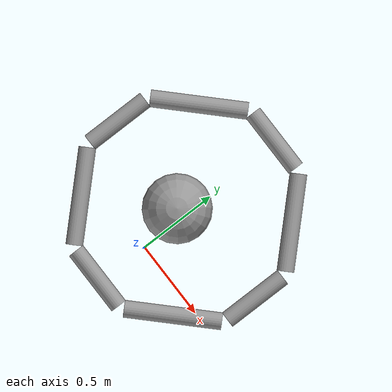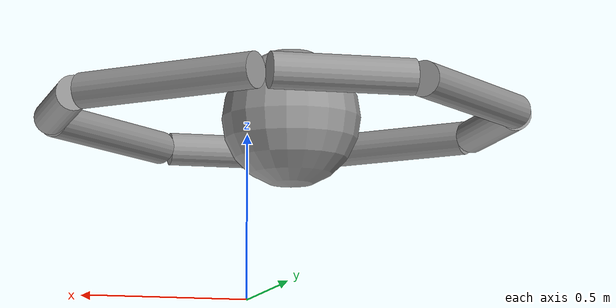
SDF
<?xml version='1.0'?>
<sdf version='1.7'>
  <model name='octagon'>
    <link name='link_4'>
      <inertial>
        <mass>1</mass>
        <inertia>
          <ixx>0.145833</ixx>
          <ixy>0</ixy>
          <ixz>0</ixz>
          <iyy>0.145833</iyy>
          <iyz>0</iyz>
          <izz>0.125</izz>
        </inertia>
        <pose>0 0 0 0 -0 0</pose>
      </inertial>
      <pose>-0.029127 0.97677 0.5 3.14159 1.57079 3.14159</pose>
      <gravity>1</gravity>
      <self_collide>0</self_collide>
      <kinematic>0</kinematic>
      <enable_wind>0</enable_wind>
      <visual name='visual'>
        <pose>0 0 0 0 -0 0</pose>
        <geometry>
          <cylinder>
            <radius>0.05</radius>
            <length>0.398068</length>
          </cylinder>
        </geometry>
        <material>
          <lighting>1</lighting>
          <script>
            <uri>file://media/materials/scripts/gazebo.material</uri>
            <name>Gazebo/Grey</name>
          </script>
          <shader type='pixel'>
            <normal_map>__default__</normal_map>
          </shader>
          <ambient>0.3 0.3 0.3 1</ambient>
          <diffuse>0.7 0.7 0.7 1</diffuse>
          <specular>0.01 0.01 0.01 1</specular>
          <emissive>0 0 0 1</emissive>
        </material>
        <transparency>0</transparency>
        <cast_shadows>1</cast_shadows>
      </visual>
      <collision name='collision'>
        <laser_retro>0</laser_retro>
        <max_contacts>10</max_contacts>
        <pose>0 0 0 0 -0 0</pose>
        <geometry>
          <cylinder>
            <radius>0.05</radius>
            <length>0.398068</length>
          </cylinder>
        </geometry>
        <surface>
          <friction>
            <ode>
              <mu>1</mu>
              <mu2>1</mu2>
              <fdir1>0 0 0</fdir1>
              <slip1>0</slip1>
              <slip2>0</slip2>
            </ode>
            <torsional>
              <coefficient>1</coefficient>
              <patch_radius>0</patch_radius>
              <surface_radius>0</surface_radius>
              <use_patch_radius>1</use_patch_radius>
              <ode>
                <slip>0</slip>
              </ode>
            </torsional>
          </friction>
          <bounce>
            <restitution_coefficient>0</restitution_coefficient>
            <threshold>1e+06</threshold>
          </bounce>
          <contact>
            <collide_without_contact>0</collide_without_contact>
            <collide_without_contact_bitmask>1</collide_without_contact_bitmask>
            <collide_bitmask>1</collide_bitmask>
            <ode>
              <soft_cfm>0</soft_cfm>
              <soft_erp>0.2</soft_erp>
              <kp>1e+13</kp>
              <kd>1</kd>
              <max_vel>0.01</max_vel>
              <min_depth>0</min_depth>
            </ode>
            <bullet>
              <split_impulse>1</split_impulse>
              <split_impulse_penetration_threshold>-0.01</split_impulse_penetration_threshold>
              <soft_cfm>0</soft_cfm>
              <soft_erp>0.2</soft_erp>
              <kp>1e+13</kp>
              <kd>1</kd>
            </bullet>
          </contact>
        </surface>
      </collision>
    </link>
    <link name='link_4_clone'>
      <inertial>
        <mass>1</mass>
        <inertia>
          <ixx>0.145833</ixx>
          <ixy>0</ixy>
          <ixz>0</ixz>
          <iyy>0.145833</iyy>
          <iyz>0</iyz>
          <izz>0.125</izz>
        </inertia>
        <pose>0 0 0 0 -0 0</pose>
      </inertial>
      <pose>-0.02399 -0.306731 0.5 3.14159 1.57079 3.14159</pose>
      <gravity>1</gravity>
      <self_collide>0</self_collide>
      <kinematic>0</kinematic>
      <enable_wind>0</enable_wind>
      <visual name='visual'>
        <pose>0 0 0 0 -0 0</pose>
        <geometry>
          <cylinder>
            <radius>0.05</radius>
            <length>0.398068</length>
          </cylinder>
        </geometry>
        <material>
          <lighting>1</lighting>
          <script>
            <uri>file://media/materials/scripts/gazebo.material</uri>
            <name>Gazebo/Grey</name>
          </script>
          <shader type='pixel'>
            <normal_map>__default__</normal_map>
          </shader>
          <ambient>0.3 0.3 0.3 1</ambient>
          <diffuse>0.7 0.7 0.7 1</diffuse>
          <specular>0.01 0.01 0.01 1</specular>
          <emissive>0 0 0 1</emissive>
        </material>
        <transparency>0</transparency>
        <cast_shadows>1</cast_shadows>
      </visual>
      <collision name='collision'>
        <laser_retro>0</laser_retro>
        <max_contacts>10</max_contacts>
        <pose>0 0 0 0 -0 0</pose>
        <geometry>
          <cylinder>
            <radius>0.05</radius>
            <length>0.398068</length>
          </cylinder>
        </geometry>
        <surface>
          <friction>
            <ode>
              <mu>1</mu>
              <mu2>1</mu2>
              <fdir1>0 0 0</fdir1>
              <slip1>0</slip1>
              <slip2>0</slip2>
            </ode>
            <torsional>
              <coefficient>1</coefficient>
              <patch_radius>0</patch_radius>
              <surface_radius>0</surface_radius>
              <use_patch_radius>1</use_patch_radius>
              <ode>
                <slip>0</slip>
              </ode>
            </torsional>
          </friction>
          <bounce>
            <restitution_coefficient>0</restitution_coefficient>
            <threshold>1e+06</threshold>
          </bounce>
          <contact>
            <collide_without_contact>0</collide_without_contact>
            <collide_without_contact_bitmask>1</collide_without_contact_bitmask>
            <collide_bitmask>1</collide_bitmask>
            <ode>
              <soft_cfm>0</soft_cfm>
              <soft_erp>0.2</soft_erp>
              <kp>1e+13</kp>
              <kd>1</kd>
              <max_vel>0.01</max_vel>
              <min_depth>0</min_depth>
            </ode>
            <bullet>
              <split_impulse>1</split_impulse>
              <split_impulse_penetration_threshold>-0.01</split_impulse_penetration_threshold>
              <soft_cfm>0</soft_cfm>
              <soft_erp>0.2</soft_erp>
              <kp>1e+13</kp>
              <kd>1</kd>
            </bullet>
          </contact>
        </surface>
      </collision>
    </link>
    <link name='link_4_clone_0'>
      <inertial>
        <mass>1</mass>
        <inertia>
          <ixx>0.145833</ixx>
          <ixy>0</ixy>
          <ixz>0</ixz>
          <iyy>0.145833</iyy>
          <iyz>0</iyz>
          <izz>0.125</izz>
        </inertia>
        <pose>0 0 0 0 -0 0</pose>
      </inertial>
      <pose>-0.45644 0.761979 0.5 2.35102 1.57079 3.13642</pose>
      <gravity>1</gravity>
      <self_collide>0</self_collide>
      <kinematic>0</kinematic>
      <enable_wind>0</enable_wind>
      <visual name='visual'>
        <pose>0 0 0 0 -0 0</pose>
        <geometry>
          <cylinder>
            <radius>0.05</radius>
            <length>0.562966</length>
          </cylinder>
        </geometry>
        <material>
          <lighting>1</lighting>
          <script>
            <uri>file://media/materials/scripts/gazebo.material</uri>
            <name>Gazebo/Grey</name>
          </script>
          <shader type='pixel'>
            <normal_map>__default__</normal_map>
          </shader>
          <ambient>0.3 0.3 0.3 1</ambient>
          <diffuse>0.7 0.7 0.7 1</diffuse>
          <specular>0.01 0.01 0.01 1</specular>
          <emissive>0 0 0 1</emissive>
        </material>
        <transparency>0</transparency>
        <cast_shadows>1</cast_shadows>
      </visual>
      <collision name='collision'>
        <laser_retro>0</laser_retro>
        <max_contacts>10</max_contacts>
        <pose>0 0 0 0 -0 0</pose>
        <geometry>
          <cylinder>
            <radius>0.05</radius>
            <length>0.562966</length>
          </cylinder>
        </geometry>
        <surface>
          <friction>
            <ode>
              <mu>1</mu>
              <mu2>1</mu2>
              <fdir1>0 0 0</fdir1>
              <slip1>0</slip1>
              <slip2>0</slip2>
            </ode>
            <torsional>
              <coefficient>1</coefficient>
              <patch_radius>0</patch_radius>
              <surface_radius>0</surface_radius>
              <use_patch_radius>1</use_patch_radius>
              <ode>
                <slip>0</slip>
              </ode>
            </torsional>
          </friction>
          <bounce>
            <restitution_coefficient>0</restitution_coefficient>
            <threshold>1e+06</threshold>
          </bounce>
          <contact>
            <collide_without_contact>0</collide_without_contact>
            <collide_without_contact_bitmask>1</collide_without_contact_bitmask>
            <collide_bitmask>1</collide_bitmask>
            <ode>
              <soft_cfm>0</soft_cfm>
              <soft_erp>0.2</soft_erp>
              <kp>1e+13</kp>
              <kd>1</kd>
              <max_vel>0.01</max_vel>
              <min_depth>0</min_depth>
            </ode>
            <bullet>
              <split_impulse>1</split_impulse>
              <split_impulse_penetration_threshold>-0.01</split_impulse_penetration_threshold>
              <soft_cfm>0</soft_cfm>
              <soft_erp>0.2</soft_erp>
              <kp>1e+13</kp>
              <kd>1</kd>
            </bullet>
          </contact>
        </surface>
      </collision>
    </link>
    <link name='link_4_clone_0_clone'>
      <inertial>
        <mass>1</mass>
        <inertia>
          <ixx>0.145833</ixx>
          <ixy>0</ixy>
          <ixz>0</ixz>
          <iyy>0.145833</iyy>
          <iyz>0</iyz>
          <izz>0.125</izz>
        </inertia>
        <pose>0 0 0 0 -0 0</pose>
      </inertial>
      <pose>0.406078 -0.092853 0.499999 2.35102 1.57079 3.13642</pose>
      <gravity>1</gravity>
      <self_collide>0</self_collide>
      <kinematic>0</kinematic>
      <enable_wind>0</enable_wind>
      <visual name='visual'>
        <pose>0 0 0 0 -0 0</pose>
        <geometry>
          <cylinder>
            <radius>0.05</radius>
            <length>0.562966</length>
          </cylinder>
        </geometry>
        <material>
          <lighting>1</lighting>
          <script>
            <uri>file://media/materials/scripts/gazebo.material</uri>
            <name>Gazebo/Grey</name>
          </script>
          <shader type='pixel'>
            <normal_map>__default__</normal_map>
          </shader>
          <ambient>0.3 0.3 0.3 1</ambient>
          <diffuse>0.7 0.7 0.7 1</diffuse>
          <specular>0.01 0.01 0.01 1</specular>
          <emissive>0 0 0 1</emissive>
        </material>
        <transparency>0</transparency>
        <cast_shadows>1</cast_shadows>
      </visual>
      <collision name='collision'>
        <laser_retro>0</laser_retro>
        <max_contacts>10</max_contacts>
        <pose>0 0 0 0 -0 0</pose>
        <geometry>
          <cylinder>
            <radius>0.05</radius>
            <length>0.562966</length>
          </cylinder>
        </geometry>
        <surface>
          <friction>
            <ode>
              <mu>1</mu>
              <mu2>1</mu2>
              <fdir1>0 0 0</fdir1>
              <slip1>0</slip1>
              <slip2>0</slip2>
            </ode>
            <torsional>
              <coefficient>1</coefficient>
              <patch_radius>0</patch_radius>
              <surface_radius>0</surface_radius>
              <use_patch_radius>1</use_patch_radius>
              <ode>
                <slip>0</slip>
              </ode>
            </torsional>
          </friction>
          <bounce>
            <restitution_coefficient>0</restitution_coefficient>
            <threshold>1e+06</threshold>
          </bounce>
          <contact>
            <collide_without_contact>0</collide_without_contact>
            <collide_without_contact_bitmask>1</collide_without_contact_bitmask>
            <collide_bitmask>1</collide_bitmask>
            <ode>
              <soft_cfm>0</soft_cfm>
              <soft_erp>0.2</soft_erp>
              <kp>1e+13</kp>
              <kd>1</kd>
              <max_vel>0.01</max_vel>
              <min_depth>0</min_depth>
            </ode>
            <bullet>
              <split_impulse>1</split_impulse>
              <split_impulse_penetration_threshold>-0.01</split_impulse_penetration_threshold>
              <soft_cfm>0</soft_cfm>
              <soft_erp>0.2</soft_erp>
              <kp>1e+13</kp>
              <kd>1</kd>
            </bullet>
          </contact>
        </surface>
      </collision>
    </link>
    <link name='link_4_clone_0_clone_0'>
      <inertial>
        <mass>1</mass>
        <inertia>
          <ixx>0.145833</ixx>
          <ixy>0</ixy>
          <ixz>0</ixz>
          <iyy>0.145833</iyy>
          <iyz>0</iyz>
          <izz>0.125</izz>
        </inertia>
        <pose>0 0 0 0 -0 0</pose>
      </inertial>
      <pose>-0.454744 -0.094458 0.5 0.786985 1.57079 3.13801</pose>
      <gravity>1</gravity>
      <self_collide>0</self_collide>
      <kinematic>0</kinematic>
      <enable_wind>0</enable_wind>
      <visual name='visual'>
        <pose>0 0 0 0 -0 0</pose>
        <geometry>
          <cylinder>
            <radius>0.05</radius>
            <length>0.562966</length>
          </cylinder>
        </geometry>
        <material>
          <lighting>1</lighting>
          <script>
            <uri>file://media/materials/scripts/gazebo.material</uri>
            <name>Gazebo/Grey</name>
          </script>
          <shader type='pixel'>
            <normal_map>__default__</normal_map>
          </shader>
          <ambient>0.3 0.3 0.3 1</ambient>
          <diffuse>0.7 0.7 0.7 1</diffuse>
          <specular>0.01 0.01 0.01 1</specular>
          <emissive>0 0 0 1</emissive>
        </material>
        <transparency>0</transparency>
        <cast_shadows>1</cast_shadows>
      </visual>
      <collision name='collision'>
        <laser_retro>0</laser_retro>
        <max_contacts>10</max_contacts>
        <pose>0 0 0 0 -0 0</pose>
        <geometry>
          <cylinder>
            <radius>0.05</radius>
            <length>0.562966</length>
          </cylinder>
        </geometry>
        <surface>
          <friction>
            <ode>
              <mu>1</mu>
              <mu2>1</mu2>
              <fdir1>0 0 0</fdir1>
              <slip1>0</slip1>
              <slip2>0</slip2>
            </ode>
            <torsional>
              <coefficient>1</coefficient>
              <patch_radius>0</patch_radius>
              <surface_radius>0</surface_radius>
              <use_patch_radius>1</use_patch_radius>
              <ode>
                <slip>0</slip>
              </ode>
            </torsional>
          </friction>
          <bounce>
            <restitution_coefficient>0</restitution_coefficient>
            <threshold>1e+06</threshold>
          </bounce>
          <contact>
            <collide_without_contact>0</collide_without_contact>
            <collide_without_contact_bitmask>1</collide_without_contact_bitmask>
            <collide_bitmask>1</collide_bitmask>
            <ode>
              <soft_cfm>0</soft_cfm>
              <soft_erp>0.2</soft_erp>
              <kp>1e+13</kp>
              <kd>1</kd>
              <max_vel>0.01</max_vel>
              <min_depth>0</min_depth>
            </ode>
            <bullet>
              <split_impulse>1</split_impulse>
              <split_impulse_penetration_threshold>-0.01</split_impulse_penetration_threshold>
              <soft_cfm>0</soft_cfm>
              <soft_erp>0.2</soft_erp>
              <kp>1e+13</kp>
              <kd>1</kd>
            </bullet>
          </contact>
        </surface>
      </collision>
    </link>
    <link name='link_4_clone_0_clone_0_clone'>
      <inertial>
        <mass>1</mass>
        <inertia>
          <ixx>0.145833</ixx>
          <ixy>0</ixy>
          <ixz>0</ixz>
          <iyy>0.145833</iyy>
          <iyz>0</iyz>
          <izz>0.125</izz>
        </inertia>
        <pose>0 0 0 0 -0 0</pose>
      </inertial>
      <pose>0.40382 0.769921 0.5 0.786985 1.57079 3.13801</pose>
      <gravity>1</gravity>
      <self_collide>0</self_collide>
      <kinematic>0</kinematic>
      <enable_wind>0</enable_wind>
      <visual name='visual'>
        <pose>0 0 0 0 -0 0</pose>
        <geometry>
          <cylinder>
            <radius>0.05</radius>
            <length>0.562966</length>
          </cylinder>
        </geometry>
        <material>
          <lighting>1</lighting>
          <script>
            <uri>file://media/materials/scripts/gazebo.material</uri>
            <name>Gazebo/Grey</name>
          </script>
          <shader type='pixel'>
            <normal_map>__default__</normal_map>
          </shader>
          <ambient>0.3 0.3 0.3 1</ambient>
          <diffuse>0.7 0.7 0.7 1</diffuse>
          <specular>0.01 0.01 0.01 1</specular>
          <emissive>0 0 0 1</emissive>
        </material>
        <transparency>0</transparency>
        <cast_shadows>1</cast_shadows>
      </visual>
      <collision name='collision'>
        <laser_retro>0</laser_retro>
        <max_contacts>10</max_contacts>
        <pose>0 0 0 0 -0 0</pose>
        <geometry>
          <cylinder>
            <radius>0.05</radius>
            <length>0.562966</length>
          </cylinder>
        </geometry>
        <surface>
          <friction>
            <ode>
              <mu>1</mu>
              <mu2>1</mu2>
              <fdir1>0 0 0</fdir1>
              <slip1>0</slip1>
              <slip2>0</slip2>
            </ode>
            <torsional>
              <coefficient>1</coefficient>
              <patch_radius>0</patch_radius>
              <surface_radius>0</surface_radius>
              <use_patch_radius>1</use_patch_radius>
              <ode>
                <slip>0</slip>
              </ode>
            </torsional>
          </friction>
          <bounce>
            <restitution_coefficient>0</restitution_coefficient>
            <threshold>1e+06</threshold>
          </bounce>
          <contact>
            <collide_without_contact>0</collide_without_contact>
            <collide_without_contact_bitmask>1</collide_without_contact_bitmask>
            <collide_bitmask>1</collide_bitmask>
            <ode>
              <soft_cfm>0</soft_cfm>
              <soft_erp>0.2</soft_erp>
              <kp>1e+13</kp>
              <kd>1</kd>
              <max_vel>0.01</max_vel>
              <min_depth>0</min_depth>
            </ode>
            <bullet>
              <split_impulse>1</split_impulse>
              <split_impulse_penetration_threshold>-0.01</split_impulse_penetration_threshold>
              <soft_cfm>0</soft_cfm>
              <soft_erp>0.2</soft_erp>
              <kp>1e+13</kp>
              <kd>1</kd>
            </bullet>
          </contact>
        </surface>
      </collision>
    </link>
    <link name='link_4_clone_1'>
      <inertial>
        <mass>1</mass>
        <inertia>
          <ixx>0.145833</ixx>
          <ixy>0</ixy>
          <ixz>0</ixz>
          <iyy>0.145833</iyy>
          <iyz>0</iyz>
          <izz>0.125</izz>
        </inertia>
        <pose>0 0 0 0 -0 0</pose>
      </inertial>
      <pose>-0.665422 0.33412 0.500002 1.5708 1.57079 3.14159</pose>
      <gravity>1</gravity>
      <self_collide>0</self_collide>
      <kinematic>0</kinematic>
      <enable_wind>0</enable_wind>
      <visual name='visual'>
        <pose>0 0 0 0 -0 0</pose>
        <geometry>
          <cylinder>
            <radius>0.05</radius>
            <length>0.398068</length>
          </cylinder>
        </geometry>
        <material>
          <lighting>1</lighting>
          <script>
            <uri>file://media/materials/scripts/gazebo.material</uri>
            <name>Gazebo/Grey</name>
          </script>
          <shader type='pixel'>
            <normal_map>__default__</normal_map>
          </shader>
          <ambient>0.3 0.3 0.3 1</ambient>
          <diffuse>0.7 0.7 0.7 1</diffuse>
          <specular>0.01 0.01 0.01 1</specular>
          <emissive>0 0 0 1</emissive>
        </material>
        <transparency>0</transparency>
        <cast_shadows>1</cast_shadows>
      </visual>
      <collision name='collision'>
        <laser_retro>0</laser_retro>
        <max_contacts>10</max_contacts>
        <pose>0 0 0 0 -0 0</pose>
        <geometry>
          <cylinder>
            <radius>0.05</radius>
            <length>0.398068</length>
          </cylinder>
        </geometry>
        <surface>
          <friction>
            <ode>
              <mu>1</mu>
              <mu2>1</mu2>
              <fdir1>0 0 0</fdir1>
              <slip1>0</slip1>
              <slip2>0</slip2>
            </ode>
            <torsional>
              <coefficient>1</coefficient>
              <patch_radius>0</patch_radius>
              <surface_radius>0</surface_radius>
              <use_patch_radius>1</use_patch_radius>
              <ode>
                <slip>0</slip>
              </ode>
            </torsional>
          </friction>
          <bounce>
            <restitution_coefficient>0</restitution_coefficient>
            <threshold>1e+06</threshold>
          </bounce>
          <contact>
            <collide_without_contact>0</collide_without_contact>
            <collide_without_contact_bitmask>1</collide_without_contact_bitmask>
            <collide_bitmask>1</collide_bitmask>
            <ode>
              <soft_cfm>0</soft_cfm>
              <soft_erp>0.2</soft_erp>
              <kp>1e+13</kp>
              <kd>1</kd>
              <max_vel>0.01</max_vel>
              <min_depth>0</min_depth>
            </ode>
            <bullet>
              <split_impulse>1</split_impulse>
              <split_impulse_penetration_threshold>-0.01</split_impulse_penetration_threshold>
              <soft_cfm>0</soft_cfm>
              <soft_erp>0.2</soft_erp>
              <kp>1e+13</kp>
              <kd>1</kd>
            </bullet>
          </contact>
        </surface>
      </collision>
    </link>
    <link name='link_4_clone_1_clone'>
      <inertial>
        <mass>1</mass>
        <inertia>
          <ixx>0.145833</ixx>
          <ixy>0</ixy>
          <ixz>0</ixz>
          <iyy>0.145833</iyy>
          <iyz>0</iyz>
          <izz>0.125</izz>
        </inertia>
        <pose>0 0 0 0 -0 0</pose>
      </inertial>
      <pose>0.618286 0.337066 0.5 1.5708 1.57079 3.14159</pose>
      <gravity>1</gravity>
      <self_collide>0</self_collide>
      <kinematic>0</kinematic>
      <enable_wind>0</enable_wind>
      <visual name='visual'>
        <pose>0 0 0 0 -0 0</pose>
        <geometry>
          <cylinder>
            <radius>0.05</radius>
            <length>0.398068</length>
          </cylinder>
        </geometry>
        <material>
          <lighting>1</lighting>
          <script>
            <uri>file://media/materials/scripts/gazebo.material</uri>
            <name>Gazebo/Grey</name>
          </script>
          <shader type='pixel'>
            <normal_map>__default__</normal_map>
          </shader>
          <ambient>0.3 0.3 0.3 1</ambient>
          <diffuse>0.7 0.7 0.7 1</diffuse>
          <specular>0.01 0.01 0.01 1</specular>
          <emissive>0 0 0 1</emissive>
        </material>
        <transparency>0</transparency>
        <cast_shadows>1</cast_shadows>
      </visual>
      <collision name='collision'>
        <laser_retro>0</laser_retro>
        <max_contacts>10</max_contacts>
        <pose>0 0 0 0 -0 0</pose>
        <geometry>
          <cylinder>
            <radius>0.05</radius>
            <length>0.398068</length>
          </cylinder>
        </geometry>
        <surface>
          <friction>
            <ode>
              <mu>1</mu>
              <mu2>1</mu2>
              <fdir1>0 0 0</fdir1>
              <slip1>0</slip1>
              <slip2>0</slip2>
            </ode>
            <torsional>
              <coefficient>1</coefficient>
              <patch_radius>0</patch_radius>
              <surface_radius>0</surface_radius>
              <use_patch_radius>1</use_patch_radius>
              <ode>
                <slip>0</slip>
              </ode>
            </torsional>
          </friction>
          <bounce>
            <restitution_coefficient>0</restitution_coefficient>
            <threshold>1e+06</threshold>
          </bounce>
          <contact>
            <collide_without_contact>0</collide_without_contact>
            <collide_without_contact_bitmask>1</collide_without_contact_bitmask>
            <collide_bitmask>1</collide_bitmask>
            <ode>
              <soft_cfm>0</soft_cfm>
              <soft_erp>0.2</soft_erp>
              <kp>1e+13</kp>
              <kd>1</kd>
              <max_vel>0.01</max_vel>
              <min_depth>0</min_depth>
            </ode>
            <bullet>
              <split_impulse>1</split_impulse>
              <split_impulse_penetration_threshold>-0.01</split_impulse_penetration_threshold>
              <soft_cfm>0</soft_cfm>
              <soft_erp>0.2</soft_erp>
              <kp>1e+13</kp>
              <kd>1</kd>
            </bullet>
          </contact>
        </surface>
      </collision>
    </link>
    <link name='link_5'>
      <inertial>
        <mass>0.130267</mass>
        <inertia>
          <ixx>0.00055181</ixx>
          <ixy>0</ixy>
          <ixz>0</ixz>
          <iyy>0.00055181</iyy>
          <iyz>0</iyz>
          <izz>0.00055181</izz>
        </inertia>
        <pose>0 0 0 0 -0 0</pose>
      </inertial>
      <pose>-0.060768 0.298874 0.5 0 -0 0</pose>
      <gravity>1</gravity>
      <self_collide>0</self_collide>
      <kinematic>0</kinematic>
      <enable_wind>0</enable_wind>
      <visual name='visual'>
        <pose>0 0 0 0 -0 0</pose>
        <geometry>
          <sphere>
            <radius>0.202999</radius>
          </sphere>
        </geometry>
        <material>
          <lighting>1</lighting>
          <script>
            <uri>file://media/materials/scripts/gazebo.material</uri>
            <name>Gazebo/Grey</name>
          </script>
          <shader type='pixel'>
            <normal_map>__default__</normal_map>
          </shader>
          <ambient>0 0 0 1</ambient>
          <diffuse>0 0 0 1</diffuse>
          <specular>0 0 0 1</specular>
          <emissive>0 0 0 1</emissive>
        </material>
        <transparency>0</transparency>
        <cast_shadows>1</cast_shadows>
      </visual>
      <collision name='collision'>
        <laser_retro>0</laser_retro>
        <max_contacts>10</max_contacts>
        <pose>0 0 0 0 -0 0</pose>
        <geometry>
          <sphere>
            <radius>0.202999</radius>
          </sphere>
        </geometry>
        <surface>
          <friction>
            <ode>
              <mu>1</mu>
              <mu2>1</mu2>
              <fdir1>0 0 0</fdir1>
              <slip1>0</slip1>
              <slip2>0</slip2>
            </ode>
            <torsional>
              <coefficient>1</coefficient>
              <patch_radius>0</patch_radius>
              <surface_radius>0</surface_radius>
              <use_patch_radius>1</use_patch_radius>
              <ode>
                <slip>0</slip>
              </ode>
            </torsional>
          </friction>
          <bounce>
            <restitution_coefficient>0</restitution_coefficient>
            <threshold>1e+06</threshold>
          </bounce>
          <contact>
            <collide_without_contact>0</collide_without_contact>
            <collide_without_contact_bitmask>1</collide_without_contact_bitmask>
            <collide_bitmask>1</collide_bitmask>
            <ode>
              <soft_cfm>0</soft_cfm>
              <soft_erp>0.2</soft_erp>
              <kp>1e+13</kp>
              <kd>1</kd>
              <max_vel>0.01</max_vel>
              <min_depth>0</min_depth>
            </ode>
            <bullet>
              <split_impulse>1</split_impulse>
              <split_impulse_penetration_threshold>-0.01</split_impulse_penetration_threshold>
              <soft_cfm>0</soft_cfm>
              <soft_erp>0.2</soft_erp>
              <kp>1e+13</kp>
              <kd>1</kd>
            </bullet>
          </contact>
        </surface>
      </collision>
    </link>
    <joint name='link_5_JOINT_10' type='fixed'>
      <parent>link_5</parent>
      <child>link_4_clone_0</child>
      <pose>0 0 0 0 -0 0</pose>
      <physics>
        <ode>
          <limit>
            <cfm>0</cfm>
            <erp>0.2</erp>
          </limit>
          <suspension>
            <cfm>0</cfm>
            <erp>0.2</erp>
          </suspension>
        </ode>
      </physics>
    </joint>
    <joint name='link_5_JOINT_11' type='fixed'>
      <parent>link_5</parent>
      <child>link_4</child>
      <pose>0 0 0 0 -0 0</pose>
      <physics>
        <ode>
          <limit>
            <cfm>0</cfm>
            <erp>0.2</erp>
          </limit>
          <suspension>
            <cfm>0</cfm>
            <erp>0.2</erp>
          </suspension>
        </ode>
      </physics>
    </joint>
    <joint name='link_5_JOINT_12' type='fixed'>
      <parent>link_5</parent>
      <child>link_4_clone_0_clone_0_clone</child>
      <pose>0 0 0 0 -0 0</pose>
      <physics>
        <ode>
          <limit>
            <cfm>0</cfm>
            <erp>0.2</erp>
          </limit>
          <suspension>
            <cfm>0</cfm>
            <erp>0.2</erp>
          </suspension>
        </ode>
      </physics>
    </joint>
    <joint name='link_5_JOINT_13' type='fixed'>
      <parent>link_5</parent>
      <child>link_4_clone_1_clone</child>
      <pose>0 0 0 0 -0 0</pose>
      <physics>
        <ode>
          <limit>
            <cfm>0</cfm>
            <erp>0.2</erp>
          </limit>
          <suspension>
            <cfm>0</cfm>
            <erp>0.2</erp>
          </suspension>
        </ode>
      </physics>
    </joint>
    <joint name='link_5_JOINT_14' type='fixed'>
      <parent>link_5</parent>
      <child>link_4_clone_0_clone</child>
      <pose>0 0 0 0 -0 0</pose>
      <physics>
        <ode>
          <limit>
            <cfm>0</cfm>
            <erp>0.2</erp>
          </limit>
          <suspension>
            <cfm>0</cfm>
            <erp>0.2</erp>
          </suspension>
        </ode>
      </physics>
    </joint>
    <joint name='link_5_JOINT_15' type='fixed'>
      <parent>link_5</parent>
      <child>link_4_clone</child>
      <pose>0 0 0 0 -0 0</pose>
      <physics>
        <ode>
          <limit>
            <cfm>0</cfm>
            <erp>0.2</erp>
          </limit>
          <suspension>
            <cfm>0</cfm>
            <erp>0.2</erp>
          </suspension>
        </ode>
      </physics>
    </joint>
    <joint name='link_5_JOINT_8' type='fixed'>
      <parent>link_5</parent>
      <child>link_4_clone_0_clone_0</child>
      <pose>0 0 0 0 -0 0</pose>
      <physics>
        <ode>
          <limit>
            <cfm>0</cfm>
            <erp>0.2</erp>
          </limit>
          <suspension>
            <cfm>0</cfm>
            <erp>0.2</erp>
          </suspension>
        </ode>
      </physics>
    </joint>
    <joint name='link_5_JOINT_9' type='fixed'>
      <parent>link_5</parent>
      <child>link_4_clone_1</child>
      <pose>0 0 0 0 -0 0</pose>
      <physics>
        <ode>
          <limit>
            <cfm>0</cfm>
            <erp>0.2</erp>
          </limit>
          <suspension>
            <cfm>0</cfm>
            <erp>0.2</erp>
          </suspension>
        </ode>
      </physics>
    </joint>
    <static>0</static>
    <allow_auto_disable>1</allow_auto_disable>
  </model>
</sdf>
